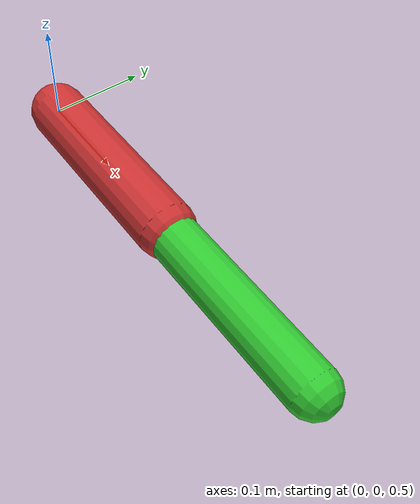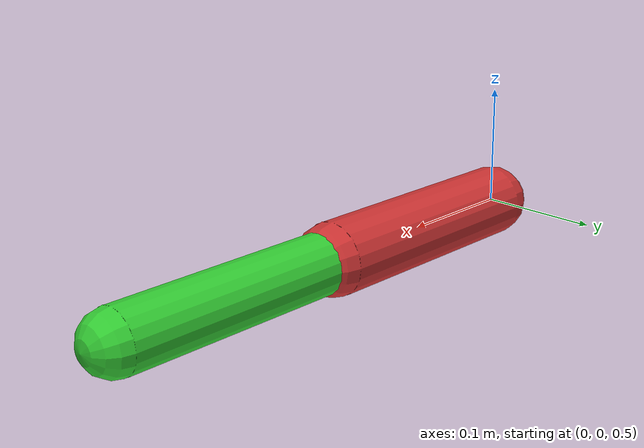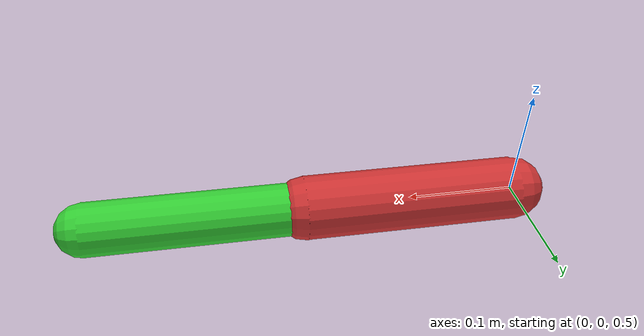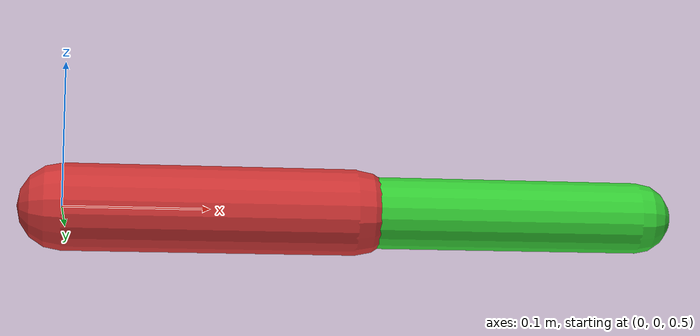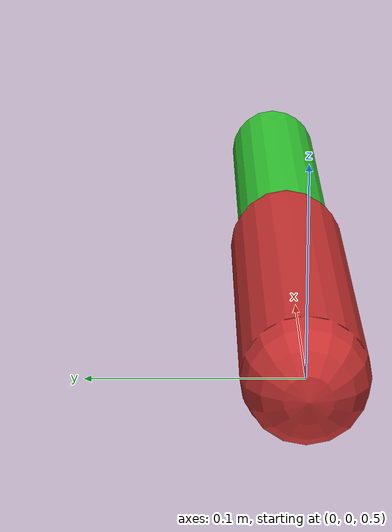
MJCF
<mujoco model="motor_arm_test">
  <compiler angle="radian"/>
  <option timestep="0.002" solver="Newton" iterations="20"/>

  <worldbody>
    <body name="link1" pos="0 0 0.5">
      <joint name="j1" type="hinge" axis="0 1 0"/>
      <inertial pos="0.1 0 0" mass="1.0" diaginertia="0.01 0.01 0.01"/>
      <geom type="capsule" fromto="0 0 0 0.2 0 0" size="0.03" rgba="0.8 0.2 0.2 1"/>

      <body name="link2" pos="0.2 0 0">
        <joint name="j2" type="hinge" axis="0 1 0"/>
        <inertial pos="0.1 0 0" mass="0.5" diaginertia="0.005 0.005 0.005"/>
        <geom type="capsule" fromto="0 0 0 0.2 0 0" size="0.025" rgba="0.2 0.8 0.2 1"/>
      </body>
    </body>
  </worldbody>

  <actuator>
    <motor name="m1" joint="j1"/>
    <motor name="m2" joint="j2"/>
  </actuator>
</mujoco>
